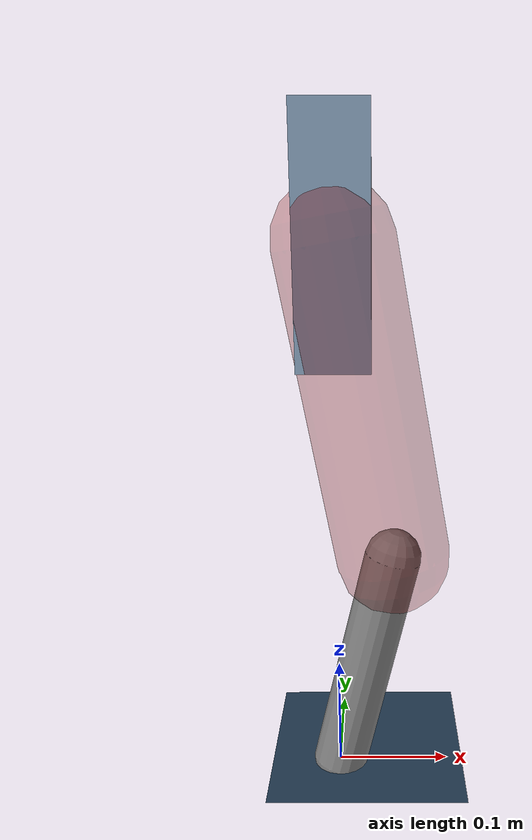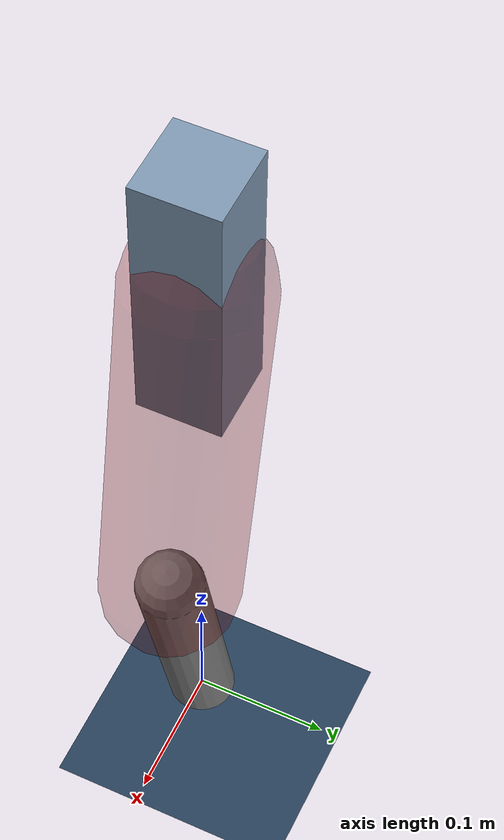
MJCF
<mujoco model="Hopper2D">
	<compiler inertiafromgeom="true" angle="radian" />
	<option timestep="0.001" integrator="implicit" cone="elliptic" solver="Newton" tolerance="1e-10" />

	<default>
		<geom contype="1" conaffinity="1" condim="3" friction="2 0.005 0.0001" solref="0.005 1" />
		<joint limited="true" damping="0.1" />
	</default>

	<asset>
		<texture name="skybox" type="skybox" builtin="gradient" rgb1=".4 .6 .8" rgb2="0 0 0" width="800" height="800" />
		<texture name="grid" type="2d" builtin="checker" rgb1=".1 .2 .3" rgb2=".2 .3 .4" width="300" height="300" mark="edge" markrgb=".2 .3 .4" />
		<material name="ground" texture="grid" texrepeat="1 1" texuniform="true" reflectance="0.1" />
		<material name="leg" rgba="0.5 0.6 0.7 1" />
	</asset>

	<worldbody>

		<geom name="floor" type="plane" size="5 5 0.25" material="ground" />

		<light directional="false" diffuse="0.8 0.8 0.8" specular="0.3 0.3 0.3" pos="0 0 2" dir="0 0 -1" />
		<light mode="targetbodycom" target="base" directional="false" diffuse="0.8 0.8 0.8" specular="0.3 0.3 0.3" pos="0 0 2" dir="0 0 -1" />

		<camera name="fixed" pos="0 -2 1" xyaxes="1 0 0 0 0 1" />
		<camera name="tracking" mode="trackcom" pos="0 -3 1" />

		<body name="root" pos="0 0 0.4722447603261847">
			<joint name="slide_x" type="slide" axis="1 0 0" range="-100 100" />
			<joint name="slide_z" type="slide" axis="0 0 1" range="0 10" />

			<body name="base" pos="0 0 0">
				<geom name="torso" type="box" size="0.03 0.03 0.1" mass="1.4460000000000002" material="leg" />

				<body name="link1" pos="0 0 0" euler="0 1.390805353650215 0">
					<joint type="hinge" axis="0 -1 0" pos="0 0 0" name="hinge1" limited="true" range="-3.14 3.14" stiffness="0" damping="0.1" />
					<geom name="thigh" type="capsule" fromto="0 0 0 0.2707162173044228 0 0" size="0.05" rgba="0.5 0 0 0.3" mass="0.9105621649914992" />

					<body name="link2" pos="0.2707162173044228 0 0" euler="0 0.4111566662353112 0">
						<joint type="hinge" axis="0 -1 0" pos="0 0 0" name="hinge2" limited="true" range="-3.14 3.14" stiffness="0" damping="0.1" />
						<geom name="shank" type="capsule" fromto="0 0 0 0.21152854302176186 0 0" size="0.025" mass="0.41057568871958566" />

					</body>
				</body>
			</body>
		</body>
	</worldbody>

	<actuator>
		<motor name="torque1" joint="hinge1" ctrlrange="-34.4460844591154 34.4460844591154" ctrllimited="true" gear="1" />
		<motor name="torque2" joint="hinge2" ctrlrange="-33.061853725194325 33.061853725194325" ctrllimited="true" gear="1" />
	</actuator>
</mujoco>
